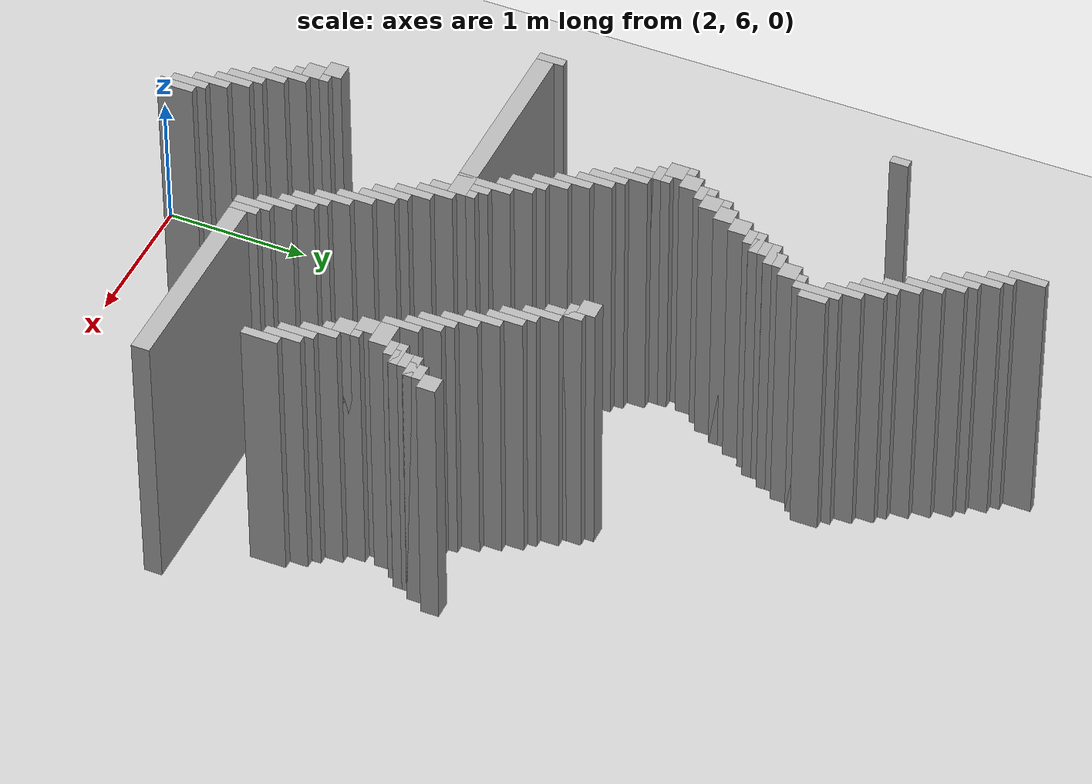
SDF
<sdf version="1.6">
 <world name="slam_world">
  <model name="ground_plane">
   <static>true</static>
   <link name="link">
    <collision name="collision">
     <geometry><plane><normal>0 0 1</normal><size>100 100</size></plane></geometry>
    </collision>
    <visual name="visual">
     <geometry><plane><normal>0 0 1</normal><size>100 100</size></plane></geometry>
     <material>
      <ambient>0.8 0.8 0.8 1</ambient>
      <diffuse>0.8 0.8 0.8 1</diffuse>
      <specular>0.8 0.8 0.8 1</specular>
     </material>
    </visual>
   </link>
  </model>
  <model name="wall_1154">
   <static>true</static>
   <pose>2.2659574468085104 12.25531914893617 1.0 0 0 0</pose>
   <link name="link">
    <collision name="collision">
     <geometry><box><size>0.06382978723404255 0.2553191489361702 2.0</size></box></geometry>
    </collision>
    <visual name="visual">
     <geometry><box><size>0.06382978723404255 0.2553191489361702 2.0</size></box></geometry>
     <material><ambient>0.5 0.5 0.5 1</ambient><diffuse>0.7 0.7 0.7 1</diffuse></material>
    </visual>
   </link>
  </model>
  <model name="wall_1172">
   <static>true</static>
   <pose>2.329787234042553 12.095744680851062 1.0 0 0 0</pose>
   <link name="link">
    <collision name="collision">
     <geometry><box><size>0.06382978723404255 0.19148936170212766 2.0</size></box></geometry>
    </collision>
    <visual name="visual">
     <geometry><box><size>0.06382978723404255 0.19148936170212766 2.0</size></box></geometry>
     <material><ambient>0.5 0.5 0.5 1</ambient><diffuse>0.7 0.7 0.7 1</diffuse></material>
    </visual>
   </link>
  </model>
  <model name="wall_1180">
   <static>true</static>
   <pose>2.3936170212765955 11.999999999999998 1.0 0 0 0</pose>
   <link name="link">
    <collision name="collision">
     <geometry><box><size>0.06382978723404255 0.2553191489361702 2.0</size></box></geometry>
    </collision>
    <visual name="visual">
     <geometry><box><size>0.06382978723404255 0.2553191489361702 2.0</size></box></geometry>
     <material><ambient>0.5 0.5 0.5 1</ambient><diffuse>0.7 0.7 0.7 1</diffuse></material>
    </visual>
   </link>
  </model>
  <model name="wall_1189">
   <static>true</static>
   <pose>2.457446808510638 11.872340425531913 1.0 0 0 0</pose>
   <link name="link">
    <collision name="collision">
     <geometry><box><size>0.06382978723404255 0.2553191489361702 2.0</size></box></geometry>
    </collision>
    <visual name="visual">
     <geometry><box><size>0.06382978723404255 0.2553191489361702 2.0</size></box></geometry>
     <material><ambient>0.5 0.5 0.5 1</ambient><diffuse>0.7 0.7 0.7 1</diffuse></material>
    </visual>
   </link>
  </model>
  <model name="wall_1198">
   <static>true</static>
   <pose>2.5212765957446805 11.808510638297872 1.0 0 0 0</pose>
   <link name="link">
    <collision name="collision">
     <geometry><box><size>0.06382978723404255 0.2553191489361702 2.0</size></box></geometry>
    </collision>
    <visual name="visual">
     <geometry><box><size>0.06382978723404255 0.2553191489361702 2.0</size></box></geometry>
     <material><ambient>0.5 0.5 0.5 1</ambient><diffuse>0.7 0.7 0.7 1</diffuse></material>
    </visual>
   </link>
  </model>
  <model name="wall_1212">
   <static>true</static>
   <pose>2.585106382978723 11.680851063829786 1.0 0 0 0</pose>
   <link name="link">
    <collision name="collision">
     <geometry><box><size>0.06382978723404255 0.2553191489361702 2.0</size></box></geometry>
    </collision>
    <visual name="visual">
     <geometry><box><size>0.06382978723404255 0.2553191489361702 2.0</size></box></geometry>
     <material><ambient>0.5 0.5 0.5 1</ambient><diffuse>0.7 0.7 0.7 1</diffuse></material>
    </visual>
   </link>
  </model>
  <model name="wall_1225">
   <static>true</static>
   <pose>2.6489361702127656 11.553191489361701 1.0 0 0 0</pose>
   <link name="link">
    <collision name="collision">
     <geometry><box><size>0.06382978723404255 0.2553191489361702 2.0</size></box></geometry>
    </collision>
    <visual name="visual">
     <geometry><box><size>0.06382978723404255 0.2553191489361702 2.0</size></box></geometry>
     <material><ambient>0.5 0.5 0.5 1</ambient><diffuse>0.7 0.7 0.7 1</diffuse></material>
    </visual>
   </link>
  </model>
  <model name="wall_1234">
   <static>true</static>
   <pose>2.712765957446808 11.425531914893616 1.0 0 0 0</pose>
   <link name="link">
    <collision name="collision">
     <geometry><box><size>0.06382978723404255 0.2553191489361702 2.0</size></box></geometry>
    </collision>
    <visual name="visual">
     <geometry><box><size>0.06382978723404255 0.2553191489361702 2.0</size></box></geometry>
     <material><ambient>0.5 0.5 0.5 1</ambient><diffuse>0.7 0.7 0.7 1</diffuse></material>
    </visual>
   </link>
  </model>
  <model name="wall_1243">
   <static>true</static>
   <pose>2.7765957446808507 11.361702127659573 1.0 0 0 0</pose>
   <link name="link">
    <collision name="collision">
     <geometry><box><size>0.06382978723404255 0.2553191489361702 2.0</size></box></geometry>
    </collision>
    <visual name="visual">
     <geometry><box><size>0.06382978723404255 0.2553191489361702 2.0</size></box></geometry>
     <material><ambient>0.5 0.5 0.5 1</ambient><diffuse>0.7 0.7 0.7 1</diffuse></material>
    </visual>
   </link>
  </model>
  <model name="wall_1256">
   <static>true</static>
   <pose>2.840425531914893 11.234042553191488 1.0 0 0 0</pose>
   <link name="link">
    <collision name="collision">
     <geometry><box><size>0.06382978723404255 0.2553191489361702 2.0</size></box></geometry>
    </collision>
    <visual name="visual">
     <geometry><box><size>0.06382978723404255 0.2553191489361702 2.0</size></box></geometry>
     <material><ambient>0.5 0.5 0.5 1</ambient><diffuse>0.7 0.7 0.7 1</diffuse></material>
    </visual>
   </link>
  </model>
  <model name="wall_1269">
   <static>true</static>
   <pose>2.9042553191489358 11.074468085106382 1.0 0 0 0</pose>
   <link name="link">
    <collision name="collision">
     <geometry><box><size>0.06382978723404255 0.3191489361702127 2.0</size></box></geometry>
    </collision>
    <visual name="visual">
     <geometry><box><size>0.06382978723404255 0.3191489361702127 2.0</size></box></geometry>
     <material><ambient>0.5 0.5 0.5 1</ambient><diffuse>0.7 0.7 0.7 1</diffuse></material>
    </visual>
   </link>
  </model>
  <model name="wall_1276">
   <static>true</static>
   <pose>1.5638297872340425 11.106382978723403 1.0 0 0 0</pose>
   <link name="link">
    <collision name="collision">
     <geometry><box><size>0.06382978723404255 0.1276595744680851 2.0</size></box></geometry>
    </collision>
    <visual name="visual">
     <geometry><box><size>0.06382978723404255 0.1276595744680851 2.0</size></box></geometry>
     <material><ambient>0.5 0.5 0.5 1</ambient><diffuse>0.7 0.7 0.7 1</diffuse></material>
    </visual>
   </link>
  </model>
  <model name="wall_1277">
   <static>true</static>
   <pose>2.9680851063829783 11.074468085106382 1.0 0 0 0</pose>
   <link name="link">
    <collision name="collision">
     <geometry><box><size>0.06382978723404255 0.19148936170212766 2.0</size></box></geometry>
    </collision>
    <visual name="visual">
     <geometry><box><size>0.06382978723404255 0.19148936170212766 2.0</size></box></geometry>
     <material><ambient>0.5 0.5 0.5 1</ambient><diffuse>0.7 0.7 0.7 1</diffuse></material>
    </visual>
   </link>
  </model>
  <model name="wall_1294">
   <static>true</static>
   <pose>2.8723404255319145 10.946808510638297 1.0 0 0 0</pose>
   <link name="link">
    <collision name="collision">
     <geometry><box><size>0.1276595744680851 0.06382978723404255 2.0</size></box></geometry>
    </collision>
    <visual name="visual">
     <geometry><box><size>0.1276595744680851 0.06382978723404255 2.0</size></box></geometry>
     <material><ambient>0.5 0.5 0.5 1</ambient><diffuse>0.7 0.7 0.7 1</diffuse></material>
    </visual>
   </link>
  </model>
  <model name="wall_1299">
   <static>true</static>
   <pose>2.808510638297872 10.851063829787233 1.0 0 0 0</pose>
   <link name="link">
    <collision name="collision">
     <geometry><box><size>0.1276595744680851 0.1276595744680851 2.0</size></box></geometry>
    </collision>
    <visual name="visual">
     <geometry><box><size>0.1276595744680851 0.1276595744680851 2.0</size></box></geometry>
     <material><ambient>0.5 0.5 0.5 1</ambient><diffuse>0.7 0.7 0.7 1</diffuse></material>
    </visual>
   </link>
  </model>
  <model name="wall_1304">
   <static>true</static>
   <pose>2.7446808510638294 10.723404255319148 1.0 0 0 0</pose>
   <link name="link">
    <collision name="collision">
     <geometry><box><size>0.1276595744680851 0.1276595744680851 2.0</size></box></geometry>
    </collision>
    <visual name="visual">
     <geometry><box><size>0.1276595744680851 0.1276595744680851 2.0</size></box></geometry>
     <material><ambient>0.5 0.5 0.5 1</ambient><diffuse>0.7 0.7 0.7 1</diffuse></material>
    </visual>
   </link>
  </model>
  <model name="wall_1309">
   <static>true</static>
   <pose>2.712765957446808 10.691489361702127 1.0 0 0 0</pose>
   <link name="link">
    <collision name="collision">
     <geometry><box><size>0.19148936170212766 0.06382978723404255 2.0</size></box></geometry>
    </collision>
    <visual name="visual">
     <geometry><box><size>0.19148936170212766 0.06382978723404255 2.0</size></box></geometry>
     <material><ambient>0.5 0.5 0.5 1</ambient><diffuse>0.7 0.7 0.7 1</diffuse></material>
    </visual>
   </link>
  </model>
  <model name="wall_1313">
   <static>true</static>
   <pose>2.680851063829787 10.595744680851062 1.0 0 0 0</pose>
   <link name="link">
    <collision name="collision">
     <geometry><box><size>0.1276595744680851 0.1276595744680851 2.0</size></box></geometry>
    </collision>
    <visual name="visual">
     <geometry><box><size>0.1276595744680851 0.1276595744680851 2.0</size></box></geometry>
     <material><ambient>0.5 0.5 0.5 1</ambient><diffuse>0.7 0.7 0.7 1</diffuse></material>
    </visual>
   </link>
  </model>
  <model name="wall_1316">
   <static>true</static>
   <pose>2.6489361702127656 10.563829787234042 1.0 0 0 0</pose>
   <link name="link">
    <collision name="collision">
     <geometry><box><size>0.19148936170212766 0.06382978723404255 2.0</size></box></geometry>
    </collision>
    <visual name="visual">
     <geometry><box><size>0.19148936170212766 0.06382978723404255 2.0</size></box></geometry>
     <material><ambient>0.5 0.5 0.5 1</ambient><diffuse>0.7 0.7 0.7 1</diffuse></material>
    </visual>
   </link>
  </model>
  <model name="wall_1320">
   <static>true</static>
   <pose>2.6170212765957444 10.5 1.0 0 0 0</pose>
   <link name="link">
    <collision name="collision">
     <geometry><box><size>0.1276595744680851 0.06382978723404255 2.0</size></box></geometry>
    </collision>
    <visual name="visual">
     <geometry><box><size>0.1276595744680851 0.06382978723404255 2.0</size></box></geometry>
     <material><ambient>0.5 0.5 0.5 1</ambient><diffuse>0.7 0.7 0.7 1</diffuse></material>
    </visual>
   </link>
  </model>
  <model name="wall_1323">
   <static>true</static>
   <pose>2.553191489361702 10.404255319148936 1.0 0 0 0</pose>
   <link name="link">
    <collision name="collision">
     <geometry><box><size>0.1276595744680851 0.1276595744680851 2.0</size></box></geometry>
    </collision>
    <visual name="visual">
     <geometry><box><size>0.1276595744680851 0.1276595744680851 2.0</size></box></geometry>
     <material><ambient>0.5 0.5 0.5 1</ambient><diffuse>0.7 0.7 0.7 1</diffuse></material>
    </visual>
   </link>
  </model>
  <model name="wall_1328">
   <static>true</static>
   <pose>2.4893617021276593 10.27659574468085 1.0 0 0 0</pose>
   <link name="link">
    <collision name="collision">
     <geometry><box><size>0.1276595744680851 0.1276595744680851 2.0</size></box></geometry>
    </collision>
    <visual name="visual">
     <geometry><box><size>0.1276595744680851 0.1276595744680851 2.0</size></box></geometry>
     <material><ambient>0.5 0.5 0.5 1</ambient><diffuse>0.7 0.7 0.7 1</diffuse></material>
    </visual>
   </link>
  </model>
  <model name="wall_1333">
   <static>true</static>
   <pose>2.457446808510638 10.24468085106383 1.0 0 0 0</pose>
   <link name="link">
    <collision name="collision">
     <geometry><box><size>0.19148936170212766 0.06382978723404255 2.0</size></box></geometry>
    </collision>
    <visual name="visual">
     <geometry><box><size>0.19148936170212766 0.06382978723404255 2.0</size></box></geometry>
     <material><ambient>0.5 0.5 0.5 1</ambient><diffuse>0.7 0.7 0.7 1</diffuse></material>
    </visual>
   </link>
  </model>
  <model name="wall_1337">
   <static>true</static>
   <pose>2.4255319148936167 10.148936170212766 1.0 0 0 0</pose>
   <link name="link">
    <collision name="collision">
     <geometry><box><size>0.1276595744680851 0.1276595744680851 2.0</size></box></geometry>
    </collision>
    <visual name="visual">
     <geometry><box><size>0.1276595744680851 0.1276595744680851 2.0</size></box></geometry>
     <material><ambient>0.5 0.5 0.5 1</ambient><diffuse>0.7 0.7 0.7 1</diffuse></material>
    </visual>
   </link>
  </model>
  <model name="wall_1340">
   <static>true</static>
   <pose>2.3936170212765955 10.117021276595743 1.0 0 0 0</pose>
   <link name="link">
    <collision name="collision">
     <geometry><box><size>0.19148936170212766 0.06382978723404255 2.0</size></box></geometry>
    </collision>
    <visual name="visual">
     <geometry><box><size>0.19148936170212766 0.06382978723404255 2.0</size></box></geometry>
     <material><ambient>0.5 0.5 0.5 1</ambient><diffuse>0.7 0.7 0.7 1</diffuse></material>
    </visual>
   </link>
  </model>
  <model name="wall_1344">
   <static>true</static>
   <pose>2.361702127659574 10.053191489361701 1.0 0 0 0</pose>
   <link name="link">
    <collision name="collision">
     <geometry><box><size>0.1276595744680851 0.06382978723404255 2.0</size></box></geometry>
    </collision>
    <visual name="visual">
     <geometry><box><size>0.1276595744680851 0.06382978723404255 2.0</size></box></geometry>
     <material><ambient>0.5 0.5 0.5 1</ambient><diffuse>0.7 0.7 0.7 1</diffuse></material>
    </visual>
   </link>
  </model>
  <model name="wall_1347">
   <static>true</static>
   <pose>2.2978723404255317 9.957446808510637 1.0 0 0 0</pose>
   <link name="link">
    <collision name="collision">
     <geometry><box><size>0.1276595744680851 0.1276595744680851 2.0</size></box></geometry>
    </collision>
    <visual name="visual">
     <geometry><box><size>0.1276595744680851 0.1276595744680851 2.0</size></box></geometry>
     <material><ambient>0.5 0.5 0.5 1</ambient><diffuse>0.7 0.7 0.7 1</diffuse></material>
    </visual>
   </link>
  </model>
  <model name="wall_1351">
   <static>true</static>
   <pose>2.2659574468085104 9.925531914893616 1.0 0 0 0</pose>
   <link name="link">
    <collision name="collision">
     <geometry><box><size>0.19148936170212766 0.06382978723404255 2.0</size></box></geometry>
    </collision>
    <visual name="visual">
     <geometry><box><size>0.19148936170212766 0.06382978723404255 2.0</size></box></geometry>
     <material><ambient>0.5 0.5 0.5 1</ambient><diffuse>0.7 0.7 0.7 1</diffuse></material>
    </visual>
   </link>
  </model>
  <model name="wall_1354">
   <static>true</static>
   <pose>2.234042553191489 9.829787234042552 1.0 0 0 0</pose>
   <link name="link">
    <collision name="collision">
     <geometry><box><size>0.1276595744680851 0.1276595744680851 2.0</size></box></geometry>
    </collision>
    <visual name="visual">
     <geometry><box><size>0.1276595744680851 0.1276595744680851 2.0</size></box></geometry>
     <material><ambient>0.5 0.5 0.5 1</ambient><diffuse>0.7 0.7 0.7 1</diffuse></material>
    </visual>
   </link>
  </model>
  <model name="wall_1355">
   <static>true</static>
   <pose>3.6382978723404253 9.829787234042552 1.0 0 0 0</pose>
   <link name="link">
    <collision name="collision">
     <geometry><box><size>0.1276595744680851 0.1276595744680851 2.0</size></box></geometry>
    </collision>
    <visual name="visual">
     <geometry><box><size>0.1276595744680851 0.1276595744680851 2.0</size></box></geometry>
     <material><ambient>0.5 0.5 0.5 1</ambient><diffuse>0.7 0.7 0.7 1</diffuse></material>
    </visual>
   </link>
  </model>
  <model name="wall_1363">
   <static>true</static>
   <pose>2.329787234042553 9.702127659574467 1.0 0 0 0</pose>
   <link name="link">
    <collision name="collision">
     <geometry><box><size>0.06382978723404255 0.2553191489361702 2.0</size></box></geometry>
    </collision>
    <visual name="visual">
     <geometry><box><size>0.06382978723404255 0.2553191489361702 2.0</size></box></geometry>
     <material><ambient>0.5 0.5 0.5 1</ambient><diffuse>0.7 0.7 0.7 1</diffuse></material>
    </visual>
   </link>
  </model>
  <model name="wall_1364">
   <static>true</static>
   <pose>3.734042553191489 9.702127659574467 1.0 0 0 0</pose>
   <link name="link">
    <collision name="collision">
     <geometry><box><size>0.06382978723404255 0.2553191489361702 2.0</size></box></geometry>
    </collision>
    <visual name="visual">
     <geometry><box><size>0.06382978723404255 0.2553191489361702 2.0</size></box></geometry>
     <material><ambient>0.5 0.5 0.5 1</ambient><diffuse>0.7 0.7 0.7 1</diffuse></material>
    </visual>
   </link>
  </model>
  <model name="wall_1371">
   <static>true</static>
   <pose>2.2978723404255317 9.734042553191488 1.0 0 0 0</pose>
   <link name="link">
    <collision name="collision">
     <geometry><box><size>0.1276595744680851 0.06382978723404255 2.0</size></box></geometry>
    </collision>
    <visual name="visual">
     <geometry><box><size>0.1276595744680851 0.06382978723404255 2.0</size></box></geometry>
     <material><ambient>0.5 0.5 0.5 1</ambient><diffuse>0.7 0.7 0.7 1</diffuse></material>
    </visual>
   </link>
  </model>
  <model name="wall_1372">
   <static>true</static>
   <pose>3.702127659574468 9.734042553191488 1.0 0 0 0</pose>
   <link name="link">
    <collision name="collision">
     <geometry><box><size>0.1276595744680851 0.06382978723404255 2.0</size></box></geometry>
    </collision>
    <visual name="visual">
     <geometry><box><size>0.1276595744680851 0.06382978723404255 2.0</size></box></geometry>
     <material><ambient>0.5 0.5 0.5 1</ambient><diffuse>0.7 0.7 0.7 1</diffuse></material>
    </visual>
   </link>
  </model>
  <model name="wall_1379">
   <static>true</static>
   <pose>2.3936170212765955 9.574468085106382 1.0 0 0 0</pose>
   <link name="link">
    <collision name="collision">
     <geometry><box><size>0.06382978723404255 0.2553191489361702 2.0</size></box></geometry>
    </collision>
    <visual name="visual">
     <geometry><box><size>0.06382978723404255 0.2553191489361702 2.0</size></box></geometry>
     <material><ambient>0.5 0.5 0.5 1</ambient><diffuse>0.7 0.7 0.7 1</diffuse></material>
    </visual>
   </link>
  </model>
  <model name="wall_1380">
   <static>true</static>
   <pose>3.7978723404255317 9.574468085106382 1.0 0 0 0</pose>
   <link name="link">
    <collision name="collision">
     <geometry><box><size>0.06382978723404255 0.2553191489361702 2.0</size></box></geometry>
    </collision>
    <visual name="visual">
     <geometry><box><size>0.06382978723404255 0.2553191489361702 2.0</size></box></geometry>
     <material><ambient>0.5 0.5 0.5 1</ambient><diffuse>0.7 0.7 0.7 1</diffuse></material>
    </visual>
   </link>
  </model>
  <model name="wall_1390">
   <static>true</static>
   <pose>2.457446808510638 9.446808510638297 1.0 0 0 0</pose>
   <link name="link">
    <collision name="collision">
     <geometry><box><size>0.06382978723404255 0.2553191489361702 2.0</size></box></geometry>
    </collision>
    <visual name="visual">
     <geometry><box><size>0.06382978723404255 0.2553191489361702 2.0</size></box></geometry>
     <material><ambient>0.5 0.5 0.5 1</ambient><diffuse>0.7 0.7 0.7 1</diffuse></material>
    </visual>
   </link>
  </model>
  <model name="wall_1391">
   <static>true</static>
   <pose>3.861702127659574 9.446808510638297 1.0 0 0 0</pose>
   <link name="link">
    <collision name="collision">
     <geometry><box><size>0.06382978723404255 0.2553191489361702 2.0</size></box></geometry>
    </collision>
    <visual name="visual">
     <geometry><box><size>0.06382978723404255 0.2553191489361702 2.0</size></box></geometry>
     <material><ambient>0.5 0.5 0.5 1</ambient><diffuse>0.7 0.7 0.7 1</diffuse></material>
    </visual>
   </link>
  </model>
  <model name="wall_1401">
   <static>true</static>
   <pose>2.5212765957446805 9.382978723404255 1.0 0 0 0</pose>
   <link name="link">
    <collision name="collision">
     <geometry><box><size>0.06382978723404255 0.2553191489361702 2.0</size></box></geometry>
    </collision>
    <visual name="visual">
     <geometry><box><size>0.06382978723404255 0.2553191489361702 2.0</size></box></geometry>
     <material><ambient>0.5 0.5 0.5 1</ambient><diffuse>0.7 0.7 0.7 1</diffuse></material>
    </visual>
   </link>
  </model>
  <model name="wall_1402">
   <static>true</static>
   <pose>3.9255319148936167 9.382978723404255 1.0 0 0 0</pose>
   <link name="link">
    <collision name="collision">
     <geometry><box><size>0.06382978723404255 0.2553191489361702 2.0</size></box></geometry>
    </collision>
    <visual name="visual">
     <geometry><box><size>0.06382978723404255 0.2553191489361702 2.0</size></box></geometry>
     <material><ambient>0.5 0.5 0.5 1</ambient><diffuse>0.7 0.7 0.7 1</diffuse></material>
    </visual>
   </link>
  </model>
  <model name="wall_1420">
   <static>true</static>
   <pose>2.585106382978723 9.25531914893617 1.0 0 0 0</pose>
   <link name="link">
    <collision name="collision">
     <geometry><box><size>0.06382978723404255 0.2553191489361702 2.0</size></box></geometry>
    </collision>
    <visual name="visual">
     <geometry><box><size>0.06382978723404255 0.2553191489361702 2.0</size></box></geometry>
     <material><ambient>0.5 0.5 0.5 1</ambient><diffuse>0.7 0.7 0.7 1</diffuse></material>
    </visual>
   </link>
  </model>
  <model name="wall_1421">
   <static>true</static>
   <pose>3.9893617021276593 9.25531914893617 1.0 0 0 0</pose>
   <link name="link">
    <collision name="collision">
     <geometry><box><size>0.06382978723404255 0.2553191489361702 2.0</size></box></geometry>
    </collision>
    <visual name="visual">
     <geometry><box><size>0.06382978723404255 0.2553191489361702 2.0</size></box></geometry>
     <material><ambient>0.5 0.5 0.5 1</ambient><diffuse>0.7 0.7 0.7 1</diffuse></material>
    </visual>
   </link>
  </model>
  <model name="wall_1437">
   <static>true</static>
   <pose>2.6489361702127656 9.127659574468085 1.0 0 0 0</pose>
   <link name="link">
    <collision name="collision">
     <geometry><box><size>0.06382978723404255 0.2553191489361702 2.0</size></box></geometry>
    </collision>
    <visual name="visual">
     <geometry><box><size>0.06382978723404255 0.2553191489361702 2.0</size></box></geometry>
     <material><ambient>0.5 0.5 0.5 1</ambient><diffuse>0.7 0.7 0.7 1</diffuse></material>
    </visual>
   </link>
  </model>
  <model name="wall_1438">
   <static>true</static>
   <pose>4.053191489361701 9.127659574468085 1.0 0 0 0</pose>
   <link name="link">
    <collision name="collision">
     <geometry><box><size>0.06382978723404255 0.2553191489361702 2.0</size></box></geometry>
    </collision>
    <visual name="visual">
     <geometry><box><size>0.06382978723404255 0.2553191489361702 2.0</size></box></geometry>
     <material><ambient>0.5 0.5 0.5 1</ambient><diffuse>0.7 0.7 0.7 1</diffuse></material>
    </visual>
   </link>
  </model>
  <model name="wall_1439">
   <static>true</static>
   <pose>4.659574468085106 9.191489361702127 1.0 0 0 0</pose>
   <link name="link">
    <collision name="collision">
     <geometry><box><size>0.1276595744680851 0.1276595744680851 2.0</size></box></geometry>
    </collision>
    <visual name="visual">
     <geometry><box><size>0.1276595744680851 0.1276595744680851 2.0</size></box></geometry>
     <material><ambient>0.5 0.5 0.5 1</ambient><diffuse>0.7 0.7 0.7 1</diffuse></material>
    </visual>
   </link>
  </model>
  <model name="wall_1448">
   <static>true</static>
   <pose>2.712765957446808 9.0 1.0 0 0 0</pose>
   <link name="link">
    <collision name="collision">
     <geometry><box><size>0.06382978723404255 0.2553191489361702 2.0</size></box></geometry>
    </collision>
    <visual name="visual">
     <geometry><box><size>0.06382978723404255 0.2553191489361702 2.0</size></box></geometry>
     <material><ambient>0.5 0.5 0.5 1</ambient><diffuse>0.7 0.7 0.7 1</diffuse></material>
    </visual>
   </link>
  </model>
  <model name="wall_1449">
   <static>true</static>
   <pose>4.117021276595745 9.0 1.0 0 0 0</pose>
   <link name="link">
    <collision name="collision">
     <geometry><box><size>0.06382978723404255 0.2553191489361702 2.0</size></box></geometry>
    </collision>
    <visual name="visual">
     <geometry><box><size>0.06382978723404255 0.2553191489361702 2.0</size></box></geometry>
     <material><ambient>0.5 0.5 0.5 1</ambient><diffuse>0.7 0.7 0.7 1</diffuse></material>
    </visual>
   </link>
  </model>
  <model name="wall_1450">
   <static>true</static>
   <pose>4.595744680851063 9.063829787234042 1.0 0 0 0</pose>
   <link name="link">
    <collision name="collision">
     <geometry><box><size>0.1276595744680851 0.1276595744680851 2.0</size></box></geometry>
    </collision>
    <visual name="visual">
     <geometry><box><size>0.1276595744680851 0.1276595744680851 2.0</size></box></geometry>
     <material><ambient>0.5 0.5 0.5 1</ambient><diffuse>0.7 0.7 0.7 1</diffuse></material>
    </visual>
   </link>
  </model>
  <model name="wall_1459">
   <static>true</static>
   <pose>2.7765957446808507 8.936170212765957 1.0 0 0 0</pose>
   <link name="link">
    <collision name="collision">
     <geometry><box><size>0.06382978723404255 0.2553191489361702 2.0</size></box></geometry>
    </collision>
    <visual name="visual">
     <geometry><box><size>0.06382978723404255 0.2553191489361702 2.0</size></box></geometry>
     <material><ambient>0.5 0.5 0.5 1</ambient><diffuse>0.7 0.7 0.7 1</diffuse></material>
    </visual>
   </link>
  </model>
  <model name="wall_1460">
   <static>true</static>
   <pose>4.180851063829787 8.936170212765957 1.0 0 0 0</pose>
   <link name="link">
    <collision name="collision">
     <geometry><box><size>0.06382978723404255 0.2553191489361702 2.0</size></box></geometry>
    </collision>
    <visual name="visual">
     <geometry><box><size>0.06382978723404255 0.2553191489361702 2.0</size></box></geometry>
     <material><ambient>0.5 0.5 0.5 1</ambient><diffuse>0.7 0.7 0.7 1</diffuse></material>
    </visual>
   </link>
  </model>
  <model name="wall_1461">
   <static>true</static>
   <pose>4.5638297872340425 9.03191489361702 1.0 0 0 0</pose>
   <link name="link">
    <collision name="collision">
     <geometry><box><size>0.19148936170212766 0.06382978723404255 2.0</size></box></geometry>
    </collision>
    <visual name="visual">
     <geometry><box><size>0.19148936170212766 0.06382978723404255 2.0</size></box></geometry>
     <material><ambient>0.5 0.5 0.5 1</ambient><diffuse>0.7 0.7 0.7 1</diffuse></material>
    </visual>
   </link>
  </model>
  <model name="wall_1469">
   <static>true</static>
   <pose>4.531914893617021 8.936170212765957 1.0 0 0 0</pose>
   <link name="link">
    <collision name="collision">
     <geometry><box><size>0.1276595744680851 0.1276595744680851 2.0</size></box></geometry>
    </collision>
    <visual name="visual">
     <geometry><box><size>0.1276595744680851 0.1276595744680851 2.0</size></box></geometry>
     <material><ambient>0.5 0.5 0.5 1</ambient><diffuse>0.7 0.7 0.7 1</diffuse></material>
    </visual>
   </link>
  </model>
  <model name="wall_1476">
   <static>true</static>
   <pose>2.840425531914893 8.74468085106383 1.0 0 0 0</pose>
   <link name="link">
    <collision name="collision">
     <geometry><box><size>0.06382978723404255 0.3829787234042553 2.0</size></box></geometry>
    </collision>
    <visual name="visual">
     <geometry><box><size>0.06382978723404255 0.3829787234042553 2.0</size></box></geometry>
     <material><ambient>0.5 0.5 0.5 1</ambient><diffuse>0.7 0.7 0.7 1</diffuse></material>
    </visual>
   </link>
  </model>
  <model name="wall_1477">
   <static>true</static>
   <pose>4.24468085106383 8.808510638297872 1.0 0 0 0</pose>
   <link name="link">
    <collision name="collision">
     <geometry><box><size>0.06382978723404255 0.2553191489361702 2.0</size></box></geometry>
    </collision>
    <visual name="visual">
     <geometry><box><size>0.06382978723404255 0.2553191489361702 2.0</size></box></geometry>
     <material><ambient>0.5 0.5 0.5 1</ambient><diffuse>0.7 0.7 0.7 1</diffuse></material>
    </visual>
   </link>
  </model>
  <model name="wall_1478">
   <static>true</static>
   <pose>4.5 8.904255319148936 1.0 0 0 0</pose>
   <link name="link">
    <collision name="collision">
     <geometry><box><size>0.19148936170212766 0.06382978723404255 2.0</size></box></geometry>
    </collision>
    <visual name="visual">
     <geometry><box><size>0.19148936170212766 0.06382978723404255 2.0</size></box></geometry>
     <material><ambient>0.5 0.5 0.5 1</ambient><diffuse>0.7 0.7 0.7 1</diffuse></material>
    </visual>
   </link>
  </model>
  <model name="wall_1486">
   <static>true</static>
   <pose>4.468085106382978 8.840425531914892 1.0 0 0 0</pose>
   <link name="link">
    <collision name="collision">
     <geometry><box><size>0.1276595744680851 0.06382978723404255 2.0</size></box></geometry>
    </collision>
    <visual name="visual">
     <geometry><box><size>0.1276595744680851 0.06382978723404255 2.0</size></box></geometry>
     <material><ambient>0.5 0.5 0.5 1</ambient><diffuse>0.7 0.7 0.7 1</diffuse></material>
    </visual>
   </link>
  </model>
  <model name="wall_1493">
   <static>true</static>
   <pose>2.9042553191489358 8.680851063829786 1.0 0 0 0</pose>
   <link name="link">
    <collision name="collision">
     <geometry><box><size>0.06382978723404255 0.2553191489361702 2.0</size></box></geometry>
    </collision>
    <visual name="visual">
     <geometry><box><size>0.06382978723404255 0.2553191489361702 2.0</size></box></geometry>
     <material><ambient>0.5 0.5 0.5 1</ambient><diffuse>0.7 0.7 0.7 1</diffuse></material>
    </visual>
   </link>
  </model>
  <model name="wall_1494">
   <static>true</static>
   <pose>4.372340425531915 8.74468085106383 1.0 0 0 0</pose>
   <link name="link">
    <collision name="collision">
     <geometry><box><size>0.19148936170212766 0.1276595744680851 2.0</size></box></geometry>
    </collision>
    <visual name="visual">
     <geometry><box><size>0.19148936170212766 0.1276595744680851 2.0</size></box></geometry>
     <material><ambient>0.5 0.5 0.5 1</ambient><diffuse>0.7 0.7 0.7 1</diffuse></material>
    </visual>
   </link>
  </model>
  <model name="wall_1501">
   <static>true</static>
   <pose>1.5638297872340425 8.648936170212766 1.0 0 0 0</pose>
   <link name="link">
    <collision name="collision">
     <geometry><box><size>0.06382978723404255 0.19148936170212766 2.0</size></box></geometry>
    </collision>
    <visual name="visual">
     <geometry><box><size>0.06382978723404255 0.19148936170212766 2.0</size></box></geometry>
     <material><ambient>0.5 0.5 0.5 1</ambient><diffuse>0.7 0.7 0.7 1</diffuse></material>
    </visual>
   </link>
  </model>
  <model name="wall_1502">
   <static>true</static>
   <pose>2.9680851063829783 8.585106382978722 1.0 0 0 0</pose>
   <link name="link">
    <collision name="collision">
     <geometry><box><size>0.06382978723404255 0.3191489361702127 2.0</size></box></geometry>
    </collision>
    <visual name="visual">
     <geometry><box><size>0.06382978723404255 0.3191489361702127 2.0</size></box></geometry>
     <material><ambient>0.5 0.5 0.5 1</ambient><diffuse>0.7 0.7 0.7 1</diffuse></material>
    </visual>
   </link>
  </model>
  <model name="wall_1508">
   <static>true</static>
   <pose>2.2978723404255317 8.617021276595745 1.0 0 0 0</pose>
   <link name="link">
    <collision name="collision">
     <geometry><box><size>1.404255319148936 0.1276595744680851 2.0</size></box></geometry>
    </collision>
    <visual name="visual">
     <geometry><box><size>1.404255319148936 0.1276595744680851 2.0</size></box></geometry>
     <material><ambient>0.5 0.5 0.5 1</ambient><diffuse>0.7 0.7 0.7 1</diffuse></material>
    </visual>
   </link>
  </model>
  <model name="wall_1509">
   <static>true</static>
   <pose>4.340425531914893 8.617021276595745 1.0 0 0 0</pose>
   <link name="link">
    <collision name="collision">
     <geometry><box><size>0.1276595744680851 0.1276595744680851 2.0</size></box></geometry>
    </collision>
    <visual name="visual">
     <geometry><box><size>0.1276595744680851 0.1276595744680851 2.0</size></box></geometry>
     <material><ambient>0.5 0.5 0.5 1</ambient><diffuse>0.7 0.7 0.7 1</diffuse></material>
    </visual>
   </link>
  </model>
  <model name="wall_1517">
   <static>true</static>
   <pose>3.031914893617021 8.48936170212766 1.0 0 0 0</pose>
   <link name="link">
    <collision name="collision">
     <geometry><box><size>0.06382978723404255 0.2553191489361702 2.0</size></box></geometry>
    </collision>
    <visual name="visual">
     <geometry><box><size>0.06382978723404255 0.2553191489361702 2.0</size></box></geometry>
     <material><ambient>0.5 0.5 0.5 1</ambient><diffuse>0.7 0.7 0.7 1</diffuse></material>
    </visual>
   </link>
  </model>
  <model name="wall_1518">
   <static>true</static>
   <pose>4.4361702127659575 8.48936170212766 1.0 0 0 0</pose>
   <link name="link">
    <collision name="collision">
     <geometry><box><size>0.06382978723404255 0.2553191489361702 2.0</size></box></geometry>
    </collision>
    <visual name="visual">
     <geometry><box><size>0.06382978723404255 0.2553191489361702 2.0</size></box></geometry>
     <material><ambient>0.5 0.5 0.5 1</ambient><diffuse>0.7 0.7 0.7 1</diffuse></material>
    </visual>
   </link>
  </model>
  <model name="wall_1525">
   <static>true</static>
   <pose>4.404255319148936 8.48936170212766 1.0 0 0 0</pose>
   <link name="link">
    <collision name="collision">
     <geometry><box><size>0.1276595744680851 0.1276595744680851 2.0</size></box></geometry>
    </collision>
    <visual name="visual">
     <geometry><box><size>0.1276595744680851 0.1276595744680851 2.0</size></box></geometry>
     <material><ambient>0.5 0.5 0.5 1</ambient><diffuse>0.7 0.7 0.7 1</diffuse></material>
    </visual>
   </link>
  </model>
  <model name="wall_1532">
   <static>true</static>
   <pose>3.095744680851064 8.361702127659575 1.0 0 0 0</pose>
   <link name="link">
    <collision name="collision">
     <geometry><box><size>0.06382978723404255 0.2553191489361702 2.0</size></box></geometry>
    </collision>
    <visual name="visual">
     <geometry><box><size>0.06382978723404255 0.2553191489361702 2.0</size></box></geometry>
     <material><ambient>0.5 0.5 0.5 1</ambient><diffuse>0.7 0.7 0.7 1</diffuse></material>
    </visual>
   </link>
  </model>
  <model name="wall_1533">
   <static>true</static>
   <pose>4.5 8.361702127659575 1.0 0 0 0</pose>
   <link name="link">
    <collision name="collision">
     <geometry><box><size>0.06382978723404255 0.2553191489361702 2.0</size></box></geometry>
    </collision>
    <visual name="visual">
     <geometry><box><size>0.06382978723404255 0.2553191489361702 2.0</size></box></geometry>
     <material><ambient>0.5 0.5 0.5 1</ambient><diffuse>0.7 0.7 0.7 1</diffuse></material>
    </visual>
   </link>
  </model>
  <model name="wall_1541">
   <static>true</static>
   <pose>3.1595744680851063 8.23404255319149 1.0 0 0 0</pose>
   <link name="link">
    <collision name="collision">
     <geometry><box><size>0.06382978723404255 0.2553191489361702 2.0</size></box></geometry>
    </collision>
    <visual name="visual">
     <geometry><box><size>0.06382978723404255 0.2553191489361702 2.0</size></box></geometry>
     <material><ambient>0.5 0.5 0.5 1</ambient><diffuse>0.7 0.7 0.7 1</diffuse></material>
    </visual>
   </link>
  </model>
  <model name="wall_1542">
   <static>true</static>
   <pose>4.5638297872340425 8.23404255319149 1.0 0 0 0</pose>
   <link name="link">
    <collision name="collision">
     <geometry><box><size>0.06382978723404255 0.2553191489361702 2.0</size></box></geometry>
    </collision>
    <visual name="visual">
     <geometry><box><size>0.06382978723404255 0.2553191489361702 2.0</size></box></geometry>
     <material><ambient>0.5 0.5 0.5 1</ambient><diffuse>0.7 0.7 0.7 1</diffuse></material>
    </visual>
   </link>
  </model>
  <model name="wall_1549">
   <static>true</static>
   <pose>3.223404255319149 8.170212765957446 1.0 0 0 0</pose>
   <link name="link">
    <collision name="collision">
     <geometry><box><size>0.06382978723404255 0.2553191489361702 2.0</size></box></geometry>
    </collision>
    <visual name="visual">
     <geometry><box><size>0.06382978723404255 0.2553191489361702 2.0</size></box></geometry>
     <material><ambient>0.5 0.5 0.5 1</ambient><diffuse>0.7 0.7 0.7 1</diffuse></material>
    </visual>
   </link>
  </model>
  <model name="wall_1550">
   <static>true</static>
   <pose>4.627659574468085 8.170212765957446 1.0 0 0 0</pose>
   <link name="link">
    <collision name="collision">
     <geometry><box><size>0.06382978723404255 0.2553191489361702 2.0</size></box></geometry>
    </collision>
    <visual name="visual">
     <geometry><box><size>0.06382978723404255 0.2553191489361702 2.0</size></box></geometry>
     <material><ambient>0.5 0.5 0.5 1</ambient><diffuse>0.7 0.7 0.7 1</diffuse></material>
    </visual>
   </link>
  </model>
  <model name="wall_1558">
   <static>true</static>
   <pose>3.2872340425531914 8.042553191489361 1.0 0 0 0</pose>
   <link name="link">
    <collision name="collision">
     <geometry><box><size>0.06382978723404255 0.2553191489361702 2.0</size></box></geometry>
    </collision>
    <visual name="visual">
     <geometry><box><size>0.06382978723404255 0.2553191489361702 2.0</size></box></geometry>
     <material><ambient>0.5 0.5 0.5 1</ambient><diffuse>0.7 0.7 0.7 1</diffuse></material>
    </visual>
   </link>
  </model>
  <model name="wall_1559">
   <static>true</static>
   <pose>4.691489361702128 8.042553191489361 1.0 0 0 0</pose>
   <link name="link">
    <collision name="collision">
     <geometry><box><size>0.06382978723404255 0.2553191489361702 2.0</size></box></geometry>
    </collision>
    <visual name="visual">
     <geometry><box><size>0.06382978723404255 0.2553191489361702 2.0</size></box></geometry>
     <material><ambient>0.5 0.5 0.5 1</ambient><diffuse>0.7 0.7 0.7 1</diffuse></material>
    </visual>
   </link>
  </model>
  <model name="wall_1567">
   <static>true</static>
   <pose>3.351063829787234 7.914893617021276 1.0 0 0 0</pose>
   <link name="link">
    <collision name="collision">
     <geometry><box><size>0.06382978723404255 0.2553191489361702 2.0</size></box></geometry>
    </collision>
    <visual name="visual">
     <geometry><box><size>0.06382978723404255 0.2553191489361702 2.0</size></box></geometry>
     <material><ambient>0.5 0.5 0.5 1</ambient><diffuse>0.7 0.7 0.7 1</diffuse></material>
    </visual>
   </link>
  </model>
  <model name="wall_1575">
   <static>true</static>
   <pose>3.4148936170212765 7.787234042553191 1.0 0 0 0</pose>
   <link name="link">
    <collision name="collision">
     <geometry><box><size>0.06382978723404255 0.2553191489361702 2.0</size></box></geometry>
    </collision>
    <visual name="visual">
     <geometry><box><size>0.06382978723404255 0.2553191489361702 2.0</size></box></geometry>
     <material><ambient>0.5 0.5 0.5 1</ambient><diffuse>0.7 0.7 0.7 1</diffuse></material>
    </visual>
   </link>
  </model>
  <model name="wall_1583">
   <static>true</static>
   <pose>3.478723404255319 7.723404255319148 1.0 0 0 0</pose>
   <link name="link">
    <collision name="collision">
     <geometry><box><size>0.06382978723404255 0.2553191489361702 2.0</size></box></geometry>
    </collision>
    <visual name="visual">
     <geometry><box><size>0.06382978723404255 0.2553191489361702 2.0</size></box></geometry>
     <material><ambient>0.5 0.5 0.5 1</ambient><diffuse>0.7 0.7 0.7 1</diffuse></material>
    </visual>
   </link>
  </model>
  <model name="wall_1592">
   <static>true</static>
   <pose>3.5425531914893615 7.595744680851063 1.0 0 0 0</pose>
   <link name="link">
    <collision name="collision">
     <geometry><box><size>0.06382978723404255 0.2553191489361702 2.0</size></box></geometry>
    </collision>
    <visual name="visual">
     <geometry><box><size>0.06382978723404255 0.2553191489361702 2.0</size></box></geometry>
     <material><ambient>0.5 0.5 0.5 1</ambient><diffuse>0.7 0.7 0.7 1</diffuse></material>
    </visual>
   </link>
  </model>
  <model name="wall_1601">
   <static>true</static>
   <pose>3.606382978723404 7.468085106382978 1.0 0 0 0</pose>
   <link name="link">
    <collision name="collision">
     <geometry><box><size>0.06382978723404255 0.2553191489361702 2.0</size></box></geometry>
    </collision>
    <visual name="visual">
     <geometry><box><size>0.06382978723404255 0.2553191489361702 2.0</size></box></geometry>
     <material><ambient>0.5 0.5 0.5 1</ambient><diffuse>0.7 0.7 0.7 1</diffuse></material>
    </visual>
   </link>
  </model>
  <model name="wall_1607">
   <static>true</static>
   <pose>3.6702127659574466 7.436170212765957 1.0 0 0 0</pose>
   <link name="link">
    <collision name="collision">
     <geometry><box><size>0.06382978723404255 0.19148936170212766 2.0</size></box></geometry>
    </collision>
    <visual name="visual">
     <geometry><box><size>0.06382978723404255 0.19148936170212766 2.0</size></box></geometry>
     <material><ambient>0.5 0.5 0.5 1</ambient><diffuse>0.7 0.7 0.7 1</diffuse></material>
    </visual>
   </link>
  </model>
  <model name="wall_1611">
   <static>true</static>
   <pose>2.234042553191489 7.404255319148936 1.0 0 0 0</pose>
   <link name="link">
    <collision name="collision">
     <geometry><box><size>0.1276595744680851 0.1276595744680851 2.0</size></box></geometry>
    </collision>
    <visual name="visual">
     <geometry><box><size>0.1276595744680851 0.1276595744680851 2.0</size></box></geometry>
     <material><ambient>0.5 0.5 0.5 1</ambient><diffuse>0.7 0.7 0.7 1</diffuse></material>
    </visual>
   </link>
  </model>
  <model name="wall_1612">
   <static>true</static>
   <pose>4.404255319148936 7.404255319148936 1.0 0 0 0</pose>
   <link name="link">
    <collision name="collision">
     <geometry><box><size>1.404255319148936 0.1276595744680851 2.0</size></box></geometry>
    </collision>
    <visual name="visual">
     <geometry><box><size>1.404255319148936 0.1276595744680851 2.0</size></box></geometry>
     <material><ambient>0.5 0.5 0.5 1</ambient><diffuse>0.7 0.7 0.7 1</diffuse></material>
    </visual>
   </link>
  </model>
  <model name="wall_1620">
   <static>true</static>
   <pose>2.329787234042553 7.276595744680851 1.0 0 0 0</pose>
   <link name="link">
    <collision name="collision">
     <geometry><box><size>0.06382978723404255 0.2553191489361702 2.0</size></box></geometry>
    </collision>
    <visual name="visual">
     <geometry><box><size>0.06382978723404255 0.2553191489361702 2.0</size></box></geometry>
     <material><ambient>0.5 0.5 0.5 1</ambient><diffuse>0.7 0.7 0.7 1</diffuse></material>
    </visual>
   </link>
  </model>
  <model name="wall_1628">
   <static>true</static>
   <pose>2.2978723404255317 7.276595744680851 1.0 0 0 0</pose>
   <link name="link">
    <collision name="collision">
     <geometry><box><size>0.1276595744680851 0.1276595744680851 2.0</size></box></geometry>
    </collision>
    <visual name="visual">
     <geometry><box><size>0.1276595744680851 0.1276595744680851 2.0</size></box></geometry>
     <material><ambient>0.5 0.5 0.5 1</ambient><diffuse>0.7 0.7 0.7 1</diffuse></material>
    </visual>
   </link>
  </model>
  <model name="wall_1636">
   <static>true</static>
   <pose>2.3936170212765955 7.148936170212766 1.0 0 0 0</pose>
   <link name="link">
    <collision name="collision">
     <geometry><box><size>0.06382978723404255 0.2553191489361702 2.0</size></box></geometry>
    </collision>
    <visual name="visual">
     <geometry><box><size>0.06382978723404255 0.2553191489361702 2.0</size></box></geometry>
     <material><ambient>0.5 0.5 0.5 1</ambient><diffuse>0.7 0.7 0.7 1</diffuse></material>
    </visual>
   </link>
  </model>
  <model name="wall_1648">
   <static>true</static>
   <pose>2.457446808510638 7.0212765957446805 1.0 0 0 0</pose>
   <link name="link">
    <collision name="collision">
     <geometry><box><size>0.06382978723404255 0.2553191489361702 2.0</size></box></geometry>
    </collision>
    <visual name="visual">
     <geometry><box><size>0.06382978723404255 0.2553191489361702 2.0</size></box></geometry>
     <material><ambient>0.5 0.5 0.5 1</ambient><diffuse>0.7 0.7 0.7 1</diffuse></material>
    </visual>
   </link>
  </model>
  <model name="wall_1656">
   <static>true</static>
   <pose>2.5212765957446805 6.8936170212765955 1.0 0 0 0</pose>
   <link name="link">
    <collision name="collision">
     <geometry><box><size>0.06382978723404255 0.2553191489361702 2.0</size></box></geometry>
    </collision>
    <visual name="visual">
     <geometry><box><size>0.06382978723404255 0.2553191489361702 2.0</size></box></geometry>
     <material><ambient>0.5 0.5 0.5 1</ambient><diffuse>0.7 0.7 0.7 1</diffuse></material>
    </visual>
   </link>
  </model>
  <model name="wall_1664">
   <static>true</static>
   <pose>2.585106382978723 6.829787234042553 1.0 0 0 0</pose>
   <link name="link">
    <collision name="collision">
     <geometry><box><size>0.06382978723404255 0.2553191489361702 2.0</size></box></geometry>
    </collision>
    <visual name="visual">
     <geometry><box><size>0.06382978723404255 0.2553191489361702 2.0</size></box></geometry>
     <material><ambient>0.5 0.5 0.5 1</ambient><diffuse>0.7 0.7 0.7 1</diffuse></material>
    </visual>
   </link>
  </model>
  <model name="wall_1676">
   <static>true</static>
   <pose>2.6489361702127656 6.702127659574468 1.0 0 0 0</pose>
   <link name="link">
    <collision name="collision">
     <geometry><box><size>0.06382978723404255 0.2553191489361702 2.0</size></box></geometry>
    </collision>
    <visual name="visual">
     <geometry><box><size>0.06382978723404255 0.2553191489361702 2.0</size></box></geometry>
     <material><ambient>0.5 0.5 0.5 1</ambient><diffuse>0.7 0.7 0.7 1</diffuse></material>
    </visual>
   </link>
  </model>
  <model name="wall_1688">
   <static>true</static>
   <pose>2.712765957446808 6.574468085106383 1.0 0 0 0</pose>
   <link name="link">
    <collision name="collision">
     <geometry><box><size>0.06382978723404255 0.2553191489361702 2.0</size></box></geometry>
    </collision>
    <visual name="visual">
     <geometry><box><size>0.06382978723404255 0.2553191489361702 2.0</size></box></geometry>
     <material><ambient>0.5 0.5 0.5 1</ambient><diffuse>0.7 0.7 0.7 1</diffuse></material>
    </visual>
   </link>
  </model>
  <model name="wall_1696">
   <static>true</static>
   <pose>2.7765957446808507 6.51063829787234 1.0 0 0 0</pose>
   <link name="link">
    <collision name="collision">
     <geometry><box><size>0.06382978723404255 0.2553191489361702 2.0</size></box></geometry>
    </collision>
    <visual name="visual">
     <geometry><box><size>0.06382978723404255 0.2553191489361702 2.0</size></box></geometry>
     <material><ambient>0.5 0.5 0.5 1</ambient><diffuse>0.7 0.7 0.7 1</diffuse></material>
    </visual>
   </link>
  </model>
 </world>
</sdf>
